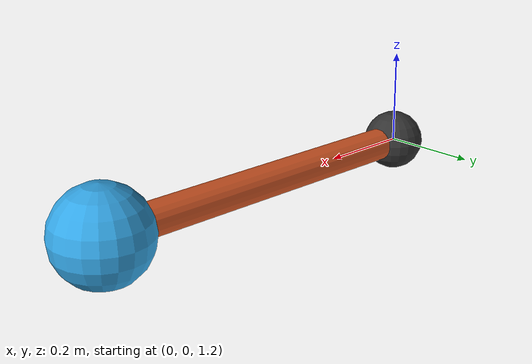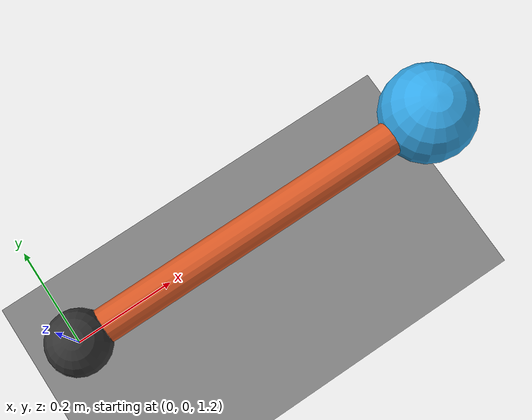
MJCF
<mujoco model="feedback-controlled pendulum">
  <compiler angle="degree"/>
  <option timestep="0.002" gravity="0 0 -9.81"/>

  <visual>
    <headlight ambient="0.4 0.4 0.4" diffuse="0.9 0.8 0.8"/>
  </visual>

  <asset>
    <texture name="checker" type="2d" builtin="checker"
             rgb1="0.15 0.15 0.15" rgb2="0.85 0.85 0.85"
             width="256" height="256"/>
    <material name="checker-floor" texture="checker"
              texrepeat="2 2" texuniform="true" reflectance="0.1"/>
  </asset>

  <worldbody>
    <geom name="floor" type="plane" size="2 2 0.1" material="checker-floor"/>
    <geom name="pivot-marker" type="sphere" pos="0 0 1.2" size="0.065"
          contype="0" conaffinity="0" rgba="0.2 0.2 0.2 1"/>

    <body name="pendulum" pos="0 0 1.2">
      <joint name="pivot" type="hinge" axis="0 1 0" damping="0.05"/>
      <geom name="rod" type="capsule" fromto="0 0 0 0.8 0 0"
            size="0.035" mass="0.3" rgba="0.85 0.35 0.15 1"/>
      <geom name="bob" type="sphere" pos="0.8 0 0" size="0.1"
            mass="0.7" rgba="0.2 0.65 0.9 1"/>
    </body>
  </worldbody>

  <actuator>
    <motor name="pivot-motor" joint="pivot" gear="1"
           ctrllimited="true" ctrlrange="-3 3"/>
  </actuator>
</mujoco>
